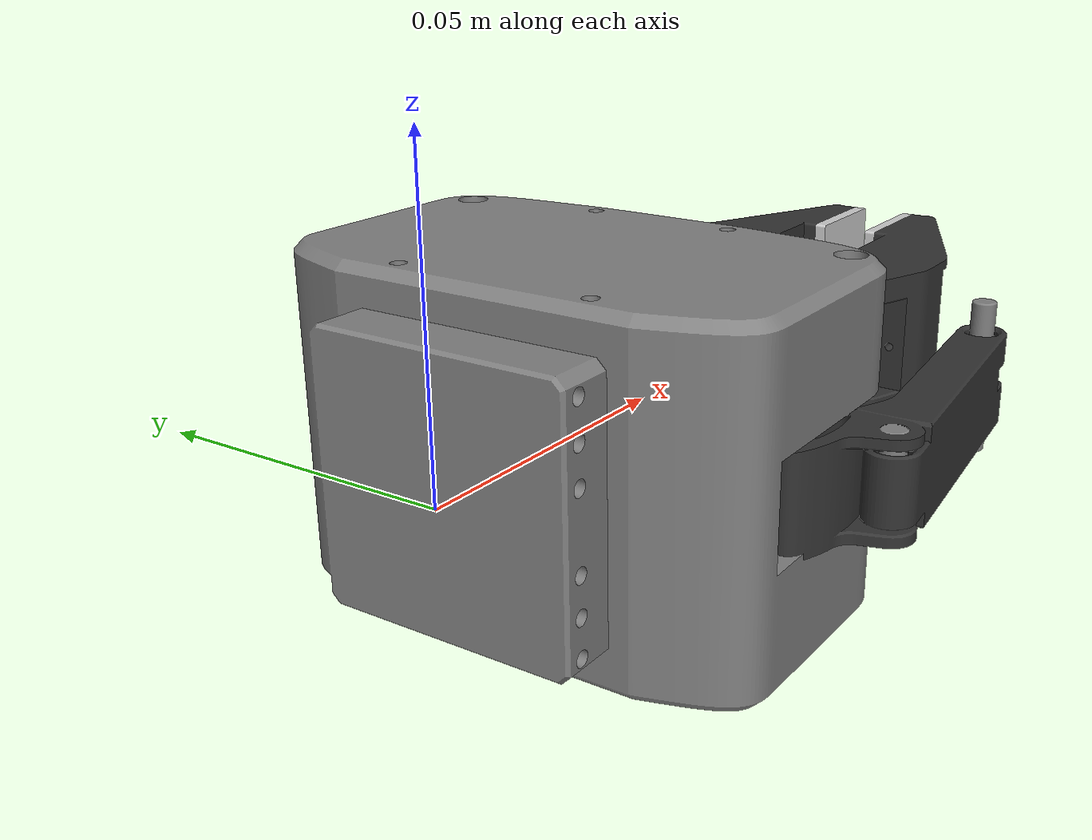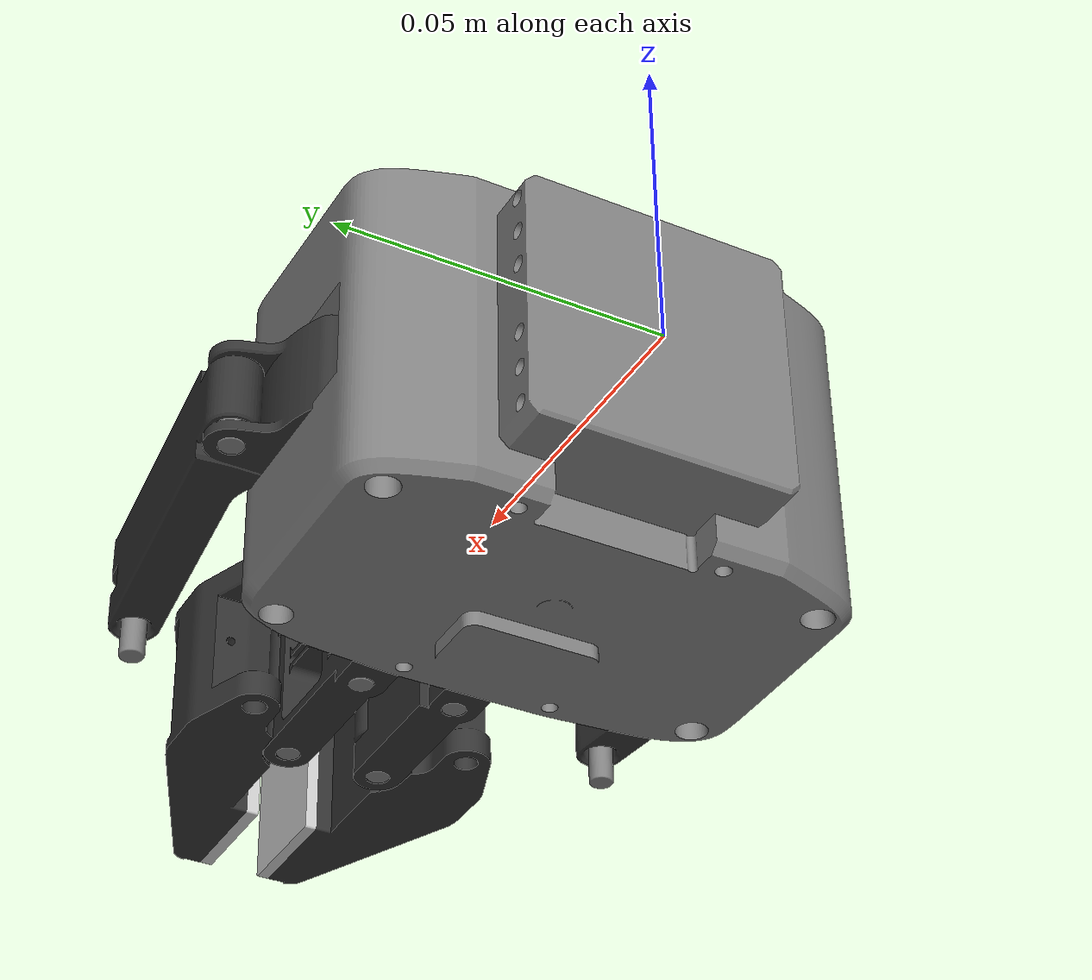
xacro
<?xml version="1.0"?>
<robot name="robotis_gripper" xmlns:xacro="http://ros.org/wiki/xacro">
    <xacro:include filename="$(find robotis_gripper_description)/urdf/_gripper.urdf.xacro" />

    <link name="world"/>

    <joint name="world_fixed" type="fixed">
        <parent link="world"/>
        <child link="base_link"/>
        <origin xyz="0 0 0" rpy="0 0 0"/>
    </joint>

    <link name="base_link" />
    <robotis_gripper parent="base_link">
        <origin xyz="0 0 0" rpy="0 0 0"/>
    </robotis_gripper>
</robot>

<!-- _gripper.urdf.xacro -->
<robot name="robotis_gripper" xmlns:xacro="http://ros.org/wiki/xacro">

    <include filename="$(find robotis_gripper_description)/urdf/gazebo.urdf.xacro"/>

    <xacro:macro name="robotis_gripper" params="parent *origin prefix:=''">
        <link name="gripper_base_link">
            <visual>
                <origin xyz="0 0 0" rpy="0 0 0"/>
                <geometry>
                    <mesh filename="package://robotis_gripper_description/meshes/gripper_base.dae" scale="1 1 1"/>
                </geometry>
            </visual>
            <collision>
                <origin xyz="0 0 0" rpy="0 0 0"/>
                <geometry>
                    <mesh filename="package://robotis_gripper_description/meshes/gripper_base.dae" scale="1 1 1"/>
                </geometry>
            </collision>
            <inertial>
                <origin xyz="0.03022 0.0 0.00109" rpy="0 0 0"/>
                <mass value="0.3910"/>
                <inertia ixx="0.000276" ixy="0.0" ixz="0.0" iyy="0.000198" iyz="0.0" izz="0.000265"/>
            </inertial>
        </link>

        <joint name="gripper_base_fixed_joint" type="fixed">
            <parent link="${parent}"/>
            <child link="gripper_base_link"/>
            <origin xyz="0 0 0" rpy="0 0 0"/>
        </joint>

        <link name="gripper_l_inner_link">
            <visual>
                <origin xyz="0 0 0" rpy="0 0 0"/>
                <geometry>
                    <mesh filename="package://robotis_gripper_description/meshes/inner_link.dae" scale="1 1 1"/>
                </geometry>
            </visual>
            <collision>
                <origin xyz="0 0 0" rpy="0 0 0"/>
                <geometry>
                    <mesh filename="package://robotis_gripper_description/meshes/inner_link.dae" scale="1 1 1"/>
                </geometry>
            </collision>
            <inertial>
                <origin xyz="0.02966 -0.00035 0.00002" rpy="0 0 0"/>
                <mass value="0.0158"/>
                <inertia ixx="0.000002" ixy="0.0" ixz="0.0" iyy="0.000006" iyz="0.0" izz="0.000004"/>
            </inertial>
        </link>

        <joint name="gripper_joint" type="revolute">
            <parent link="gripper_base_link"/>
            <child link="gripper_l_inner_link"/>
            <origin xyz="0.048 0.008 0" rpy="0 0 0"/>
            <axis xyz="0 0 1"/>
            <limit effort="1000" velocity="1.0" lower="-0.075" upper="1.2217"/>
        </joint>

        <transmission name="gripper_joint_tran">
            <type>transmission_interface/SimpleTransmission</type>
            <joint name="gripper_joint" >
                <hardwareInterface>hardware_interface/PositionJointInterface</hardwareInterface>
                <mechanicalReduction>1</mechanicalReduction>
            </joint>
            <actuator name="gripper_joint_motor">
                <hardwareInterface>hardware_interface/PositionJointInterface</hardwareInterface>
                <mechanicalReduction>1</mechanicalReduction>
            </actuator>
        </transmission>

        <link name="gripper_r_inner_link">
            <visual>
                <origin xyz="0 0 0" rpy="${pi} 0 0"/>
                <geometry>
                    <mesh filename="package://robotis_gripper_description/meshes/inner_link.dae" scale="1 1 1"/>
                </geometry>
            </visual>
            <collision>
                <origin xyz="0 0 0" rpy="${pi} 0 0"/>
                <geometry>
                    <mesh filename="package://robotis_gripper_description/meshes/inner_link.dae" scale="1 1 1"/>
                </geometry>
            </collision>
            <inertial>
                <origin xyz="0.02966 -0.00035 0.00002" rpy="${pi} 0 0"/>
                <mass value="0.0158"/>
                <inertia ixx="0.000002" ixy="0.0" ixz="0.0" iyy="0.000006" iyz="0.0" izz="0.000004"/>
            </inertial>
        </link>

        <joint name="gripper_r_inner_joint" type="revolute">
            <parent link="gripper_base_link"/>
            <child link="gripper_r_inner_link"/>
            <origin xyz="0.048 -0.008 0" rpy="0 0 0"/>
            <axis xyz="0 0 1"/>
            <limit effort="1000" velocity="1.0" lower="-1.5707" upper="1.5707"/>
            <mimic joint="gripper_joint" multiplier="-1" offset="0"/>
        </joint>
        <xacro:insert_mimic_joint reference="gripper_joint" name="gripper_r_inner_joint" multiplier="-1.0" offset="0.0"/>

        <link name="gripper_l_outer_link">
            <visual>
                <origin xyz="0 0 0" rpy="0 0 0"/>
                <geometry>
                    <mesh filename="package://robotis_gripper_description/meshes/l_outer_link.dae" scale="1 1 1"/>
                </geometry>
            </visual>
            <collision>
                <origin xyz="0 0 0" rpy="0 0 0"/>
                <geometry>
                    <mesh filename="package://robotis_gripper_description/meshes/l_outer_link.dae" scale="1 1 1"/>
                </geometry>
            </collision>
            <inertial>
                <origin xyz="0.01616 0.02092 0.00067" rpy="0 0 0"/>
                <mass value="0.0130"/>
                <inertia ixx="0.000001" ixy="-0.000001" ixz="0.0" iyy="0.000006" iyz="0.0" izz="0.000006"/>
            </inertial>
        </link>

        <joint name="gripper_l_outer_joint" type="revolute">
            <parent link="gripper_base_link"/>
            <child link="gripper_l_outer_link"/>
            <origin xyz="0.0374 0.0186 0" rpy="0 0 0"/>
            <axis xyz="0 0 1"/>
            <limit effort="1000" velocity="1.0" lower="-1.5707" upper="1.5707"/>
            <mimic joint="gripper_joint" multiplier="1" offset="-0.405"/>
        </joint>
        <xacro:insert_mimic_joint reference="gripper_joint" name="gripper_l_outer_joint" multiplier="1.0" offset="-0.405"/>

        <link name="gripper_r_outer_link">
            <visual>
                <origin xyz="0 0 0" rpy="0 0 0"/>
                <geometry>
                    <mesh filename="package://robotis_gripper_description/meshes/r_outer_link.dae" scale="1 1 1"/>
                </geometry>
            </visual>
            <collision>
                <origin xyz="0 0 0" rpy="0 0 0"/>
                <geometry>
                    <mesh filename="package://robotis_gripper_description/meshes/r_outer_link.dae" scale="1 1 1"/>
                </geometry>
            </collision>
            <inertial>
                <origin xyz="0.01616 -0.02092 0.00065" rpy="0 0 0"/>
                <mass value="0.0130"/>
                <inertia ixx="0.000001" ixy="0.000001" ixz="0.0" iyy="0.000006" iyz="0.0" izz="0.000006"/>
            </inertial>
        </link>

        <joint name="gripper_r_outer_joint" type="revolute">
            <parent link="gripper_base_link"/>
            <child link="gripper_r_outer_link"/>
            <origin xyz="0.0374 -0.0186 0" rpy="0 0 0"/>
            <axis xyz="0 0 1"/>
            <limit effort="1000" velocity="1.0" lower="-1.5707" upper="1.5707"/>
            <mimic joint="gripper_joint" multiplier="-1" offset="0.405"/>
        </joint>
        <xacro:insert_mimic_joint reference="gripper_joint" name="gripper_r_outer_joint" multiplier="-1.0" offset="0.405"/>

        <link name="gripper_l_finger_link">
            <visual>
                <origin xyz="0 0 0" rpy="0 0 0"/>
                <geometry>
                    <mesh filename="package://robotis_gripper_description/meshes/finger.dae" scale="1 1 1"/>
                </geometry>
            </visual>
            <collision>
                <origin xyz="0 0 0" rpy="0 0 0"/>
                <geometry>
                    <mesh filename="package://robotis_gripper_description/meshes/finger.dae" scale="1 1 1"/>
                </geometry>
            </collision>
            <inertial>
                <origin xyz="0.00958 0.00643 0.00000" rpy="0 0 0"/>
                <mass value="0.0257"/>
                <inertia ixx="0.000003" ixy="0.000002" ixz="0.0" iyy="0.000008" iyz="0.0" izz="0.000007"/>
            </inertial>
        </link>

        <joint name="gripper_l_finger_joint" type="revolute">
            <parent link="gripper_l_inner_link"/>
            <child link="gripper_l_finger_link"/>
            <origin xyz="0.057 0 0" rpy="0 0 0"/>
            <axis xyz="0 0 1"/>
            <limit effort="1000" velocity="1.0" lower="-1.5707" upper="1.5707"/>
            <mimic joint="gripper_joint" multiplier="-1" offset="0"/>
        </joint>
        <xacro:insert_mimic_joint reference="gripper_joint" name="gripper_l_finger_joint" multiplier="-1.0" offset="0.0"/>

        <link name="gripper_r_finger_link">
            <visual>
                <origin xyz="0 0 0" rpy="${pi} 0 0"/>
                <geometry>
                    <mesh filename="package://robotis_gripper_description/meshes/finger.dae" scale="1 1 1"/>
                </geometry>
            </visual>
            <collision>
                <origin xyz="0 0 0" rpy="${pi} 0 0"/>
                <geometry>
                    <mesh filename="package://robotis_gripper_description/meshes/finger.dae" scale="1 1 1"/>
                </geometry>
            </collision>
            <inertial>
                <origin xyz="0.00958 -0.00643 0.00000" rpy="${pi} 0 0"/>
                <mass value="0.0257"/>
                <inertia ixx="0.000003" ixy="0.000002" ixz="0.0" iyy="0.000008" iyz="0.0" izz="0.000007"/>
            </inertial>
        </link>

        <joint name="gripper_r_finger_joint" type="revolute">
            <parent link="gripper_r_inner_link"/>
            <child link="gripper_r_finger_link"/>
            <origin xyz="0.057 0 0" rpy="0 0 0"/>
            <axis xyz="0 0 1"/>
            <limit effort="1000" velocity="1.0" lower="-1.5707" upper="1.5707"/>
            <mimic joint="gripper_joint" multiplier="1" offset="0"/>
        </joint>
        <xacro:insert_mimic_joint reference="gripper_joint" name="gripper_r_finger_joint" multiplier="1.0" offset="0.0"/>
    </xacro:macro>
</robot>
